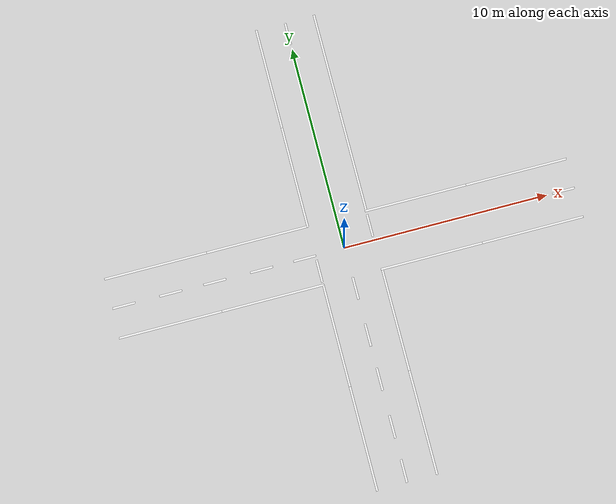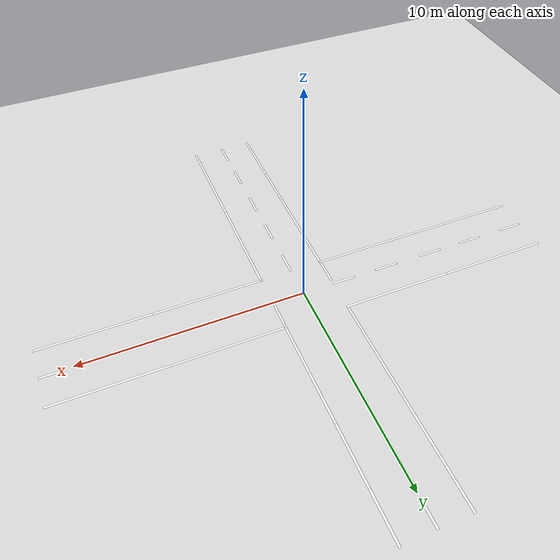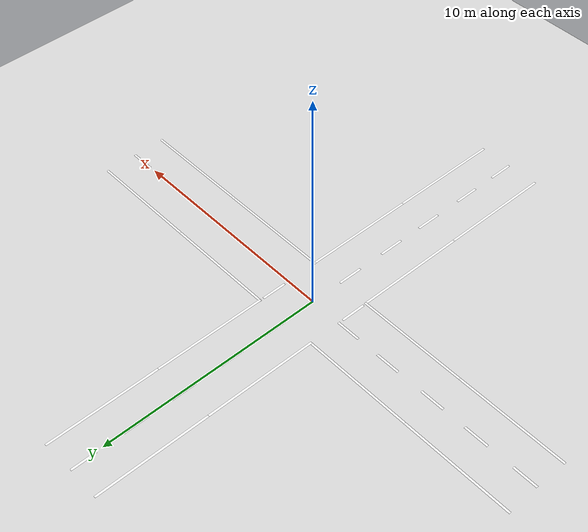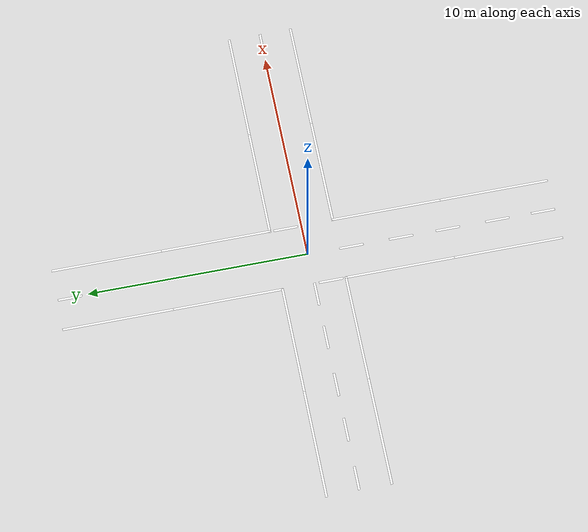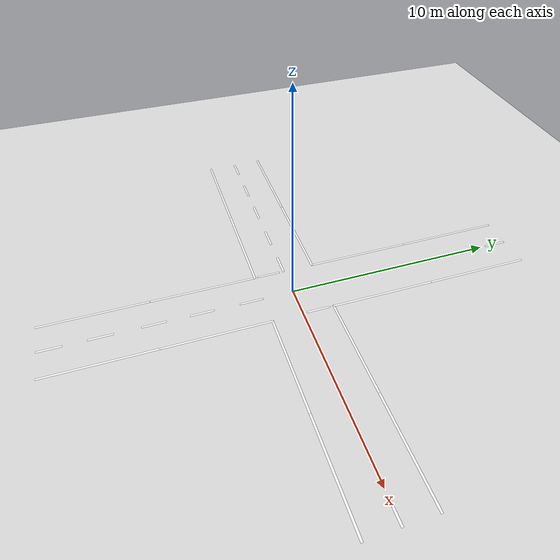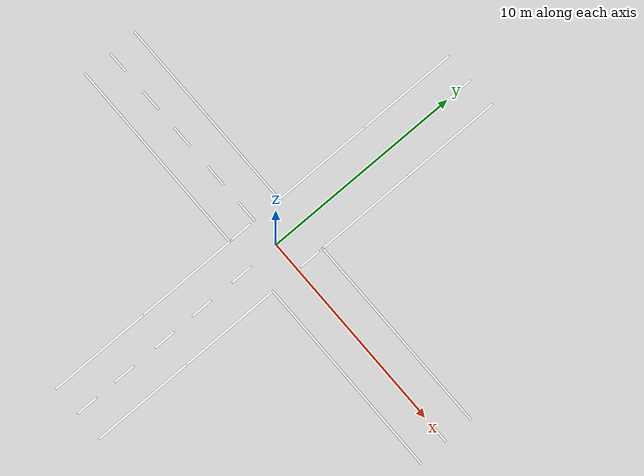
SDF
<?xml version="1.0" ?>
<sdf version="1.4">
  <!-- We use a custom world for the rrbot so that the camera angle is launched correctly -->

  <world name="default">

    <include>
      <uri>model://ground_plane</uri>
    </include>

    <!-- Global light source -->
    <include>
      <uri>model://sun</uri>
    </include>

    <include>
      <uri>model://4WayCrossing</uri>
      <pose>-0.89 0.48 0 0 0 0</pose>
    </include>

    <!-- Focus camera on tall pendulum -->
    <gui fullscreen='0'>
      <camera name='user_camera'>
        <pose>4.927360 -4.376610 3.740080 0.000000 0.275643 2.356190</pose>
        <view_controller>orbit</view_controller>
      </camera>
    </gui>

  </world>
</sdf>

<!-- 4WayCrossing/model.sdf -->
<sdf version='1.6'>
  <model name='4WayCrossing'>
    <model name='road'>
      <model name='roadmark'>
        <link name='link'>
          <pose frame=''>0 0 0.001 0 -0 0</pose>
          <inertial>
            <mass>0.362604</mass>
            <inertia>
              <ixx>0.00016034</ixx>
              <ixy>0</ixy>
              <ixz>0</ixz>
              <iyy>0.757889</iyy>
              <iyz>0</iyz>
              <izz>0.758045</izz>
            </inertia>
            <pose frame=''>0 0 0 0 -0 0</pose>
          </inertial>
          <self_collide>0</self_collide>
          <kinematic>0</kinematic>
          <gravity>0</gravity>
          <visual name='visual'>
            <geometry>
              <box>
                <size>5 0.1 1e-06</size>
              </box>
            </geometry>
            <material>
              <script>
                <name>Gazebo/White</name>
                <uri>file://media/materials/scripts/gazebo.material</uri>
              </script>
              <shader type='pixel'>
                <normal_map>__default__</normal_map>
              </shader>
              <ambient>1 1 1 0</ambient>
              <diffuse>1 1 1 0</diffuse>
              <specular>1 1 1 0</specular>
              <emissive>1 1 1 1</emissive>
              <lighting>1</lighting>
            </material>
            <pose frame=''>0 0 0 0 -0 0</pose>
            <transparency>0</transparency>
            <cast_shadows>1</cast_shadows>
          </visual>
        </link>
        <static>0</static>
        <allow_auto_disable>1</allow_auto_disable>
        <pose frame=''>-0.42038 -0.838671 -0 0 -0 0</pose>
      </model>
      <model name='roadmark_0'>
        <link name='link'>
          <pose frame=''>0 0 0.001 0 -0 0</pose>
          <inertial>
            <mass>0.362604</mass>
            <inertia>
              <ixx>0.00016034</ixx>
              <ixy>0</ixy>
              <ixz>0</ixz>
              <iyy>0.757889</iyy>
              <iyz>0</iyz>
              <izz>0.758045</izz>
            </inertia>
            <pose frame=''>0 0 0 0 -0 0</pose>
          </inertial>
          <self_collide>0</self_collide>
          <kinematic>0</kinematic>
          <gravity>0</gravity>
          <visual name='visual'>
            <geometry>
              <box>
                <size>5 0.1 1e-06</size>
              </box>
            </geometry>
            <material>
              <script>
                <name>Gazebo/White</name>
                <uri>file://media/materials/scripts/gazebo.material</uri>
              </script>
              <shader type='pixel'>
                <normal_map>__default__</normal_map>
              </shader>
              <ambient>1 1 1 0</ambient>
              <diffuse>1 1 1 0</diffuse>
              <specular>1 1 1 0</specular>
              <emissive>1 1 1 1</emissive>
              <lighting>1</lighting>
            </material>
            <pose frame=''>0 0 0 0 -0 0</pose>
            <transparency>0</transparency>
            <cast_shadows>1</cast_shadows>
          </visual>
        </link>
        <static>0</static>
        <allow_auto_disable>1</allow_auto_disable>
        <pose frame=''>4.58056 -0.838753 0 0 -0 0</pose>
      </model>
      <model name='roadmark_1'>
        <link name='link'>
          <pose frame=''>0 0 0.001 0 -0 0</pose>
          <inertial>
            <mass>0.362604</mass>
            <inertia>
              <ixx>0.00016034</ixx>
              <ixy>0</ixy>
              <ixz>0</ixz>
              <iyy>0.757889</iyy>
              <iyz>0</iyz>
              <izz>0.758045</izz>
            </inertia>
            <pose frame=''>0 0 0 0 -0 0</pose>
          </inertial>
          <self_collide>0</self_collide>
          <kinematic>0</kinematic>
          <gravity>0</gravity>
          <visual name='visual'>
            <geometry>
              <box>
                <size>5 0.1 1e-06</size>
              </box>
            </geometry>
            <material>
              <script>
                <name>Gazebo/White</name>
                <uri>file://media/materials/scripts/gazebo.material</uri>
              </script>
              <shader type='pixel'>
                <normal_map>__default__</normal_map>
              </shader>
              <ambient>1 1 1 0</ambient>
              <diffuse>1 1 1 0</diffuse>
              <specular>1 1 1 0</specular>
              <emissive>1 1 1 1</emissive>
              <lighting>1</lighting>
            </material>
            <pose frame=''>0 0 0 0 -0 0</pose>
            <transparency>0</transparency>
            <cast_shadows>1</cast_shadows>
          </visual>
        </link>
        <static>0</static>
        <allow_auto_disable>1</allow_auto_disable>
        <pose frame=''>-0.442951 2.05888 0 0 -0 0</pose>
      </model>
      <model name='roadmark_2'>
        <link name='link'>
          <pose frame=''>0 0 0.001 0 -0 0</pose>
          <inertial>
            <mass>0.362604</mass>
            <inertia>
              <ixx>0.00016034</ixx>
              <ixy>0</ixy>
              <ixz>0</ixz>
              <iyy>0.757889</iyy>
              <iyz>0</iyz>
              <izz>0.758045</izz>
            </inertia>
            <pose frame=''>0 0 0 0 -0 0</pose>
          </inertial>
          <self_collide>0</self_collide>
          <kinematic>0</kinematic>
          <gravity>0</gravity>
          <visual name='visual'>
            <geometry>
              <box>
                <size>5 0.1 1e-06</size>
              </box>
            </geometry>
            <material>
              <script>
                <name>Gazebo/White</name>
                <uri>file://media/materials/scripts/gazebo.material</uri>
              </script>
              <shader type='pixel'>
                <normal_map>__default__</normal_map>
              </shader>
              <ambient>1 1 1 0</ambient>
              <diffuse>1 1 1 0</diffuse>
              <specular>1 1 1 0</specular>
              <emissive>1 1 1 1</emissive>
              <lighting>1</lighting>
            </material>
            <pose frame=''>0 0 0 0 -0 0</pose>
            <transparency>0</transparency>
            <cast_shadows>1</cast_shadows>
          </visual>
        </link>
        <static>0</static>
        <allow_auto_disable>1</allow_auto_disable>
        <pose frame=''>4.55587 2.0583 0 0 -0 0</pose>
      </model>
      <model name='roadmark_mid'>
        <link name='link'>
          <pose frame=''>0 0 0.0001 0 -0 0</pose>
          <inertial>
            <mass>0.0807885</mass>
            <inertia>
              <ixx>3.572e-05</ixx>
              <ixy>0</ixy>
              <ixz>0</ixz>
              <iyy>0.00838261</iyy>
              <iyz>0</iyz>
              <izz>0.00841742</izz>
            </inertia>
            <pose frame=''>0 0 0 0 -0 0</pose>
          </inertial>
          <self_collide>0</self_collide>
          <kinematic>0</kinematic>
          <gravity>0</gravity>
          <visual name='visual'>
            <geometry>
              <box>
                <size>1.1 0.1 1e-06</size>
              </box>
            </geometry>
            <material>
              <script>
                <name>Gazebo/White</name>
                <uri>file://media/materials/scripts/gazebo.material</uri>
              </script>
              <shader type='pixel'>
                <normal_map>__default__</normal_map>
              </shader>
              <ambient>1 1 1 1</ambient>
              <diffuse>0.7 0.7 0.7 0</diffuse>
              <specular>0.01 0.01 0.01 0</specular>
              <emissive>0 0 0 1</emissive>
              <lighting>0</lighting>
            </material>
            <pose frame=''>0 0 0 0 -0 0</pose>
            <transparency>0</transparency>
            <cast_shadows>1</cast_shadows>
          </visual>
        </link>
        <static>0</static>
        <allow_auto_disable>1</allow_auto_disable>
        <pose frame=''>6.50343 0.603813 0 0 -0 0</pose>
      </model>
      <model name='roadmark_mid_0'>
        <link name='link'>
          <pose frame=''>0 0 0.0001 0 -0 0</pose>
          <inertial>
            <mass>0.0807885</mass>
            <inertia>
              <ixx>3.572e-05</ixx>
              <ixy>0</ixy>
              <ixz>0</ixz>
              <iyy>0.00838261</iyy>
              <iyz>0</iyz>
              <izz>0.00841742</izz>
            </inertia>
            <pose frame=''>0 0 0 0 -0 0</pose>
          </inertial>
          <self_collide>0</self_collide>
          <kinematic>0</kinematic>
          <gravity>0</gravity>
          <visual name='visual'>
            <geometry>
              <box>
                <size>1.1 0.1 1e-06</size>
              </box>
            </geometry>
            <material>
              <script>
                <name>Gazebo/White</name>
                <uri>file://media/materials/scripts/gazebo.material</uri>
              </script>
              <shader type='pixel'>
                <normal_map>__default__</normal_map>
              </shader>
              <ambient>1 1 1 1</ambient>
              <diffuse>0.7 0.7 0.7 0</diffuse>
              <specular>0.01 0.01 0.01 0</specular>
              <emissive>0 0 0 1</emissive>
              <lighting>0</lighting>
            </material>
            <pose frame=''>0 0 0 0 -0 0</pose>
            <transparency>0</transparency>
            <cast_shadows>1</cast_shadows>
          </visual>
        </link>
        <static>0</static>
        <allow_auto_disable>1</allow_auto_disable>
        <pose frame=''>4.38554 0.604394 0 0 -0 0</pose>
      </model>
      <model name='roadmark_mid_1'>
        <link name='link'>
          <pose frame=''>0 0 0.0001 0 -0 0</pose>
          <inertial>
            <mass>0.0807885</mass>
            <inertia>
              <ixx>3.572e-05</ixx>
              <ixy>0</ixy>
              <ixz>0</ixz>
              <iyy>0.00838261</iyy>
              <iyz>0</iyz>
              <izz>0.00841742</izz>
            </inertia>
            <pose frame=''>0 0 0 0 -0 0</pose>
          </inertial>
          <self_collide>0</self_collide>
          <kinematic>0</kinematic>
          <gravity>0</gravity>
          <visual name='visual'>
            <geometry>
              <box>
                <size>1.1 0.1 1e-06</size>
              </box>
            </geometry>
            <material>
              <script>
                <name>Gazebo/White</name>
                <uri>file://media/materials/scripts/gazebo.material</uri>
              </script>
              <shader type='pixel'>
                <normal_map>__default__</normal_map>
              </shader>
              <ambient>1 1 1 1</ambient>
              <diffuse>0.7 0.7 0.7 0</diffuse>
              <specular>0.01 0.01 0.01 0</specular>
              <emissive>0 0 0 1</emissive>
              <lighting>0</lighting>
            </material>
            <pose frame=''>0 0 0 0 -0 0</pose>
            <transparency>0</transparency>
            <cast_shadows>1</cast_shadows>
          </visual>
        </link>
        <static>0</static>
        <allow_auto_disable>1</allow_auto_disable>
        <pose frame=''>2.09333 0.603718 0 0 -0 0</pose>
      </model>
      <model name='roadmark_mid_2'>
        <link name='link'>
          <pose frame=''>0 0 0.0001 0 -0 0</pose>
          <inertial>
            <mass>0.0807885</mass>
            <inertia>
              <ixx>3.572e-05</ixx>
              <ixy>0</ixy>
              <ixz>0</ixz>
              <iyy>0.00838261</iyy>
              <iyz>0</iyz>
              <izz>0.00841742</izz>
            </inertia>
            <pose frame=''>0 0 0 0 -0 0</pose>
          </inertial>
          <self_collide>0</self_collide>
          <kinematic>0</kinematic>
          <gravity>0</gravity>
          <visual name='visual'>
            <geometry>
              <box>
                <size>1.1 0.1 1e-06</size>
              </box>
            </geometry>
            <material>
              <script>
                <name>Gazebo/White</name>
                <uri>file://media/materials/scripts/gazebo.material</uri>
              </script>
              <shader type='pixel'>
                <normal_map>__default__</normal_map>
              </shader>
              <ambient>1 1 1 1</ambient>
              <diffuse>0.7 0.7 0.7 0</diffuse>
              <specular>0.01 0.01 0.01 0</specular>
              <emissive>0 0 0 1</emissive>
              <lighting>0</lighting>
            </material>
            <pose frame=''>0 0 0 0 -0 0</pose>
            <transparency>0</transparency>
            <cast_shadows>1</cast_shadows>
          </visual>
        </link>
        <static>0</static>
        <allow_auto_disable>1</allow_auto_disable>
        <pose frame=''>-0.057715 0.605008 0 0 -0 0</pose>
      </model>
      <model name='roadmark_mid_3'>
        <link name='link'>
          <pose frame=''>0 0 0.0001 0 -0 0</pose>
          <inertial>
            <mass>0.0807885</mass>
            <inertia>
              <ixx>3.572e-05</ixx>
              <ixy>0</ixy>
              <ixz>0</ixz>
              <iyy>0.00838261</iyy>
              <iyz>0</iyz>
              <izz>0.00841742</izz>
            </inertia>
            <pose frame=''>0 0 0 0 -0 0</pose>
          </inertial>
          <self_collide>0</self_collide>
          <kinematic>0</kinematic>
          <gravity>0</gravity>
          <visual name='visual'>
            <geometry>
              <box>
                <size>1.1 0.1 1e-06</size>
              </box>
            </geometry>
            <material>
              <script>
                <name>Gazebo/White</name>
                <uri>file://media/materials/scripts/gazebo.material</uri>
              </script>
              <shader type='pixel'>
                <normal_map>__default__</normal_map>
              </shader>
              <ambient>1 1 1 1</ambient>
              <diffuse>0.7 0.7 0.7 0</diffuse>
              <specular>0.01 0.01 0.01 0</specular>
              <emissive>0 0 0 1</emissive>
              <lighting>0</lighting>
            </material>
            <pose frame=''>0 0 0 0 -0 0</pose>
            <transparency>0</transparency>
            <cast_shadows>1</cast_shadows>
          </visual>
        </link>
        <static>0</static>
        <allow_auto_disable>1</allow_auto_disable>
        <pose frame=''>-2.34224 0.605175 0 0 -0 0</pose>
      </model>
      <static>0</static>
      <allow_auto_disable>1</allow_auto_disable>
      <pose frame=''>5.21893 -1.07531 -0.000134 0 -0 0</pose>
    </model>
    <model name='road_0'>
      <model name='roadmark'>
        <link name='link'>
          <pose frame=''>0 0 0.001 0 -0 0</pose>
          <inertial>
            <mass>0.362604</mass>
            <inertia>
              <ixx>0.00016034</ixx>
              <ixy>0</ixy>
              <ixz>0</ixz>
              <iyy>0.757889</iyy>
              <iyz>0</iyz>
              <izz>0.758045</izz>
            </inertia>
            <pose frame=''>0 0 0 0 -0 0</pose>
          </inertial>
          <self_collide>0</self_collide>
          <kinematic>0</kinematic>
          <gravity>0</gravity>
          <visual name='visual'>
            <geometry>
              <box>
                <size>5 0.1 1e-06</size>
              </box>
            </geometry>
            <material>
              <script>
                <name>Gazebo/White</name>
                <uri>file://media/materials/scripts/gazebo.material</uri>
              </script>
              <shader type='pixel'>
                <normal_map>__default__</normal_map>
              </shader>
              <ambient>1 1 1 0</ambient>
              <diffuse>1 1 1 0</diffuse>
              <specular>1 1 1 0</specular>
              <emissive>1 1 1 1</emissive>
              <lighting>1</lighting>
            </material>
            <pose frame=''>0 0 0 0 -0 0</pose>
            <transparency>0</transparency>
            <cast_shadows>1</cast_shadows>
          </visual>
        </link>
        <static>0</static>
        <allow_auto_disable>1</allow_auto_disable>
        <pose frame=''>-0.42038 -0.838671 -0 0 -0 0</pose>
      </model>
      <model name='roadmark_0'>
        <link name='link'>
          <pose frame=''>0 0 0.001 0 -0 0</pose>
          <inertial>
            <mass>0.362604</mass>
            <inertia>
              <ixx>0.00016034</ixx>
              <ixy>0</ixy>
              <ixz>0</ixz>
              <iyy>0.757889</iyy>
              <iyz>0</iyz>
              <izz>0.758045</izz>
            </inertia>
            <pose frame=''>0 0 0 0 -0 0</pose>
          </inertial>
          <self_collide>0</self_collide>
          <kinematic>0</kinematic>
          <gravity>0</gravity>
          <visual name='visual'>
            <geometry>
              <box>
                <size>5 0.1 1e-06</size>
              </box>
            </geometry>
            <material>
              <script>
                <name>Gazebo/White</name>
                <uri>file://media/materials/scripts/gazebo.material</uri>
              </script>
              <shader type='pixel'>
                <normal_map>__default__</normal_map>
              </shader>
              <ambient>1 1 1 0</ambient>
              <diffuse>1 1 1 0</diffuse>
              <specular>1 1 1 0</specular>
              <emissive>1 1 1 1</emissive>
              <lighting>1</lighting>
            </material>
            <pose frame=''>0 0 0 0 -0 0</pose>
            <transparency>0</transparency>
            <cast_shadows>1</cast_shadows>
          </visual>
        </link>
        <static>0</static>
        <allow_auto_disable>1</allow_auto_disable>
        <pose frame=''>4.58056 -0.838753 0 0 -0 0</pose>
      </model>
      <model name='roadmark_1'>
        <link name='link'>
          <pose frame=''>0 0 0.001 0 -0 0</pose>
          <inertial>
            <mass>0.362604</mass>
            <inertia>
              <ixx>0.00016034</ixx>
              <ixy>0</ixy>
              <ixz>0</ixz>
              <iyy>0.757889</iyy>
              <iyz>0</iyz>
              <izz>0.758045</izz>
            </inertia>
            <pose frame=''>0 0 0 0 -0 0</pose>
          </inertial>
          <self_collide>0</self_collide>
          <kinematic>0</kinematic>
          <gravity>0</gravity>
          <visual name='visual'>
            <geometry>
              <box>
                <size>5 0.1 1e-06</size>
              </box>
            </geometry>
            <material>
              <script>
                <name>Gazebo/White</name>
                <uri>file://media/materials/scripts/gazebo.material</uri>
              </script>
              <shader type='pixel'>
                <normal_map>__default__</normal_map>
              </shader>
              <ambient>1 1 1 0</ambient>
              <diffuse>1 1 1 0</diffuse>
              <specular>1 1 1 0</specular>
              <emissive>1 1 1 1</emissive>
              <lighting>1</lighting>
            </material>
            <pose frame=''>0 0 0 0 -0 0</pose>
            <transparency>0</transparency>
            <cast_shadows>1</cast_shadows>
          </visual>
        </link>
        <static>0</static>
        <allow_auto_disable>1</allow_auto_disable>
        <pose frame=''>-0.442951 2.05888 0 0 -0 0</pose>
      </model>
      <model name='roadmark_2'>
        <link name='link'>
          <pose frame=''>0 0 0.001 0 -0 0</pose>
          <inertial>
            <mass>0.362604</mass>
            <inertia>
              <ixx>0.00016034</ixx>
              <ixy>0</ixy>
              <ixz>0</ixz>
              <iyy>0.757889</iyy>
              <iyz>0</iyz>
              <izz>0.758045</izz>
            </inertia>
            <pose frame=''>0 0 0 0 -0 0</pose>
          </inertial>
          <self_collide>0</self_collide>
          <kinematic>0</kinematic>
          <gravity>0</gravity>
          <visual name='visual'>
            <geometry>
              <box>
                <size>5 0.1 1e-06</size>
              </box>
            </geometry>
            <material>
              <script>
                <name>Gazebo/White</name>
                <uri>file://media/materials/scripts/gazebo.material</uri>
              </script>
              <shader type='pixel'>
                <normal_map>__default__</normal_map>
              </shader>
              <ambient>1 1 1 0</ambient>
              <diffuse>1 1 1 0</diffuse>
              <specular>1 1 1 0</specular>
              <emissive>1 1 1 1</emissive>
              <lighting>1</lighting>
            </material>
            <pose frame=''>0 0 0 0 -0 0</pose>
            <transparency>0</transparency>
            <cast_shadows>1</cast_shadows>
          </visual>
        </link>
        <static>0</static>
        <allow_auto_disable>1</allow_auto_disable>
        <pose frame=''>4.55587 2.0583 0 0 -0 0</pose>
      </model>
      <model name='roadmark_mid'>
        <link name='link'>
          <pose frame=''>0 0 0.0001 0 -0 0</pose>
          <inertial>
            <mass>0.0807885</mass>
            <inertia>
              <ixx>3.572e-05</ixx>
              <ixy>0</ixy>
              <ixz>0</ixz>
              <iyy>0.00838261</iyy>
              <iyz>0</iyz>
              <izz>0.00841742</izz>
            </inertia>
            <pose frame=''>0 0 0 0 -0 0</pose>
          </inertial>
          <self_collide>0</self_collide>
          <kinematic>0</kinematic>
          <gravity>0</gravity>
          <visual name='visual'>
            <geometry>
              <box>
                <size>1.1 0.1 1e-06</size>
              </box>
            </geometry>
            <material>
              <script>
                <name>Gazebo/White</name>
                <uri>file://media/materials/scripts/gazebo.material</uri>
              </script>
              <shader type='pixel'>
                <normal_map>__default__</normal_map>
              </shader>
              <ambient>1 1 1 1</ambient>
              <diffuse>0.7 0.7 0.7 0</diffuse>
              <specular>0.01 0.01 0.01 0</specular>
              <emissive>0 0 0 1</emissive>
              <lighting>0</lighting>
            </material>
            <pose frame=''>0 0 0 0 -0 0</pose>
            <transparency>0</transparency>
            <cast_shadows>1</cast_shadows>
          </visual>
        </link>
        <static>0</static>
        <allow_auto_disable>1</allow_auto_disable>
        <pose frame=''>6.50343 0.603813 0 0 -0 0</pose>
      </model>
      <model name='roadmark_mid_0'>
        <link name='link'>
          <pose frame=''>0 0 0.0001 0 -0 0</pose>
          <inertial>
            <mass>0.0807885</mass>
            <inertia>
              <ixx>3.572e-05</ixx>
              <ixy>0</ixy>
              <ixz>0</ixz>
              <iyy>0.00838261</iyy>
              <iyz>0</iyz>
              <izz>0.00841742</izz>
            </inertia>
            <pose frame=''>0 0 0 0 -0 0</pose>
          </inertial>
          <self_collide>0</self_collide>
          <kinematic>0</kinematic>
          <gravity>0</gravity>
          <visual name='visual'>
            <geometry>
              <box>
                <size>1.1 0.1 1e-06</size>
              </box>
            </geometry>
            <material>
              <script>
                <name>Gazebo/White</name>
                <uri>file://media/materials/scripts/gazebo.material</uri>
              </script>
              <shader type='pixel'>
                <normal_map>__default__</normal_map>
              </shader>
              <ambient>1 1 1 1</ambient>
              <diffuse>0.7 0.7 0.7 0</diffuse>
              <specular>0.01 0.01 0.01 0</specular>
              <emissive>0 0 0 1</emissive>
              <lighting>0</lighting>
            </material>
            <pose frame=''>0 0 0 0 -0 0</pose>
            <transparency>0</transparency>
            <cast_shadows>1</cast_shadows>
          </visual>
        </link>
        <static>0</static>
        <allow_auto_disable>1</allow_auto_disable>
        <pose frame=''>4.38554 0.604394 0 0 -0 0</pose>
      </model>
      <model name='roadmark_mid_1'>
        <link name='link'>
          <pose frame=''>0 0 0.0001 0 -0 0</pose>
          <inertial>
            <mass>0.0807885</mass>
            <inertia>
              <ixx>3.572e-05</ixx>
              <ixy>0</ixy>
              <ixz>0</ixz>
              <iyy>0.00838261</iyy>
              <iyz>0</iyz>
              <izz>0.00841742</izz>
            </inertia>
            <pose frame=''>0 0 0 0 -0 0</pose>
          </inertial>
          <self_collide>0</self_collide>
          <kinematic>0</kinematic>
          <gravity>0</gravity>
          <visual name='visual'>
            <geometry>
              <box>
                <size>1.1 0.1 1e-06</size>
              </box>
            </geometry>
            <material>
              <script>
                <name>Gazebo/White</name>
                <uri>file://media/materials/scripts/gazebo.material</uri>
              </script>
              <shader type='pixel'>
                <normal_map>__default__</normal_map>
              </shader>
              <ambient>1 1 1 1</ambient>
              <diffuse>0.7 0.7 0.7 0</diffuse>
              <specular>0.01 0.01 0.01 0</specular>
              <emissive>0 0 0 1</emissive>
              <lighting>0</lighting>
            </material>
            <pose frame=''>0 0 0 0 -0 0</pose>
            <transparency>0</transparency>
            <cast_shadows>1</cast_shadows>
          </visual>
        </link>
        <static>0</static>
        <allow_auto_disable>1</allow_auto_disable>
        <pose frame=''>2.09333 0.603718 0 0 -0 0</pose>
      </model>
      <model name='roadmark_mid_2'>
        <link name='link'>
          <pose frame=''>0 0 0.0001 0 -0 0</pose>
          <inertial>
            <mass>0.0807885</mass>
            <inertia>
              <ixx>3.572e-05</ixx>
              <ixy>0</ixy>
              <ixz>0</ixz>
              <iyy>0.00838261</iyy>
              <iyz>0</iyz>
              <izz>0.00841742</izz>
            </inertia>
            <pose frame=''>0 0 0 0 -0 0</pose>
          </inertial>
          <self_collide>0</self_collide>
          <kinematic>0</kinematic>
          <gravity>0</gravity>
          <visual name='visual'>
            <geometry>
              <box>
                <size>1.1 0.1 1e-06</size>
              </box>
            </geometry>
            <material>
              <script>
                <name>Gazebo/White</name>
                <uri>file://media/materials/scripts/gazebo.material</uri>
              </script>
              <shader type='pixel'>
                <normal_map>__default__</normal_map>
              </shader>
              <ambient>1 1 1 1</ambient>
              <diffuse>0.7 0.7 0.7 0</diffuse>
              <specular>0.01 0.01 0.01 0</specular>
              <emissive>0 0 0 1</emissive>
              <lighting>0</lighting>
            </material>
            <pose frame=''>0 0 0 0 -0 0</pose>
            <transparency>0</transparency>
            <cast_shadows>1</cast_shadows>
          </visual>
        </link>
        <static>0</static>
        <allow_auto_disable>1</allow_auto_disable>
        <pose frame=''>-0.057715 0.605008 0 0 -0 0</pose>
      </model>
      <model name='roadmark_mid_3'>
        <link name='link'>
          <pose frame=''>0 0 0.0001 0 -0 0</pose>
          <inertial>
            <mass>0.0807885</mass>
            <inertia>
              <ixx>3.572e-05</ixx>
              <ixy>0</ixy>
              <ixz>0</ixz>
              <iyy>0.00838261</iyy>
              <iyz>0</iyz>
              <izz>0.00841742</izz>
            </inertia>
            <pose frame=''>0 0 0 0 -0 0</pose>
          </inertial>
          <self_collide>0</self_collide>
          <kinematic>0</kinematic>
          <gravity>0</gravity>
          <visual name='visual'>
            <geometry>
              <box>
                <size>1.1 0.1 1e-06</size>
              </box>
            </geometry>
            <material>
              <script>
                <name>Gazebo/White</name>
                <uri>file://media/materials/scripts/gazebo.material</uri>
              </script>
              <shader type='pixel'>
                <normal_map>__default__</normal_map>
              </shader>
              <ambient>1 1 1 1</ambient>
              <diffuse>0.7 0.7 0.7 0</diffuse>
              <specular>0.01 0.01 0.01 0</specular>
              <emissive>0 0 0 1</emissive>
              <lighting>0</lighting>
            </material>
            <pose frame=''>0 0 0 0 -0 0</pose>
            <transparency>0</transparency>
            <cast_shadows>1</cast_shadows>
          </visual>
        </link>
        <static>0</static>
        <allow_auto_disable>1</allow_auto_disable>
        <pose frame=''>-2.34224 0.605175 0 0 -0 0</pose>
      </model>
      <static>0</static>
      <allow_auto_disable>1</allow_auto_disable>
      <pose frame=''>-7.57779 -1.09794 -0.000134 0 -0 0</pose>
    </model>
    <model name='road_1'>
      <model name='roadmark'>
        <link name='link'>
          <pose frame=''>0 0 0.001 0 -0 0</pose>
          <inertial>
            <mass>0.362604</mass>
            <inertia>
              <ixx>0.00016034</ixx>
              <ixy>0</ixy>
              <ixz>0</ixz>
              <iyy>0.757889</iyy>
              <iyz>0</iyz>
              <izz>0.758045</izz>
            </inertia>
            <pose frame=''>0 0 0 0 -0 0</pose>
          </inertial>
          <self_collide>0</self_collide>
          <kinematic>0</kinematic>
          <gravity>0</gravity>
          <visual name='visual'>
            <geometry>
              <box>
                <size>5 0.1 1e-06</size>
              </box>
            </geometry>
            <material>
              <script>
                <name>Gazebo/White</name>
                <uri>file://media/materials/scripts/gazebo.material</uri>
              </script>
              <shader type='pixel'>
                <normal_map>__default__</normal_map>
              </shader>
              <ambient>1 1 1 0</ambient>
              <diffuse>1 1 1 0</diffuse>
              <specular>1 1 1 0</specular>
              <emissive>1 1 1 1</emissive>
              <lighting>1</lighting>
            </material>
            <pose frame=''>0 0 0 0 -0 0</pose>
            <transparency>0</transparency>
            <cast_shadows>1</cast_shadows>
          </visual>
        </link>
        <static>0</static>
        <allow_auto_disable>1</allow_auto_disable>
        <pose frame=''>-0.42038 -0.838671 -0 0 -0 0</pose>
      </model>
      <model name='roadmark_0'>
        <link name='link'>
          <pose frame=''>0 0 0.001 0 -0 0</pose>
          <inertial>
            <mass>0.362604</mass>
            <inertia>
              <ixx>0.00016034</ixx>
              <ixy>0</ixy>
              <ixz>0</ixz>
              <iyy>0.757889</iyy>
              <iyz>0</iyz>
              <izz>0.758045</izz>
            </inertia>
            <pose frame=''>0 0 0 0 -0 0</pose>
          </inertial>
          <self_collide>0</self_collide>
          <kinematic>0</kinematic>
          <gravity>0</gravity>
          <visual name='visual'>
            <geometry>
              <box>
                <size>5 0.1 1e-06</size>
              </box>
            </geometry>
            <material>
              <script>
                <name>Gazebo/White</name>
                <uri>file://media/materials/scripts/gazebo.material</uri>
              </script>
              <shader type='pixel'>
                <normal_map>__default__</normal_map>
              </shader>
              <ambient>1 1 1 0</ambient>
              <diffuse>1 1 1 0</diffuse>
              <specular>1 1 1 0</specular>
              <emissive>1 1 1 1</emissive>
              <lighting>1</lighting>
            </material>
            <pose frame=''>0 0 0 0 -0 0</pose>
            <transparency>0</transparency>
            <cast_shadows>1</cast_shadows>
          </visual>
        </link>
        <static>0</static>
        <allow_auto_disable>1</allow_auto_disable>
        <pose frame=''>4.58056 -0.838753 0 0 -0 0</pose>
      </model>
      <model name='roadmark_1'>
        <link name='link'>
          <pose frame=''>0 0 0.001 0 -0 0</pose>
          <inertial>
            <mass>0.362604</mass>
            <inertia>
              <ixx>0.00016034</ixx>
              <ixy>0</ixy>
              <ixz>0</ixz>
              <iyy>0.757889</iyy>
              <iyz>0</iyz>
              <izz>0.758045</izz>
            </inertia>
            <pose frame=''>0 0 0 0 -0 0</pose>
          </inertial>
          <self_collide>0</self_collide>
          <kinematic>0</kinematic>
          <gravity>0</gravity>
          <visual name='visual'>
            <geometry>
              <box>
                <size>5 0.1 1e-06</size>
              </box>
            </geometry>
            <material>
              <script>
                <name>Gazebo/White</name>
                <uri>file://media/materials/scripts/gazebo.material</uri>
              </script>
              <shader type='pixel'>
                <normal_map>__default__</normal_map>
              </shader>
              <ambient>1 1 1 0</ambient>
              <diffuse>1 1 1 0</diffuse>
              <specular>1 1 1 0</specular>
              <emissive>1 1 1 1</emissive>
              <lighting>1</lighting>
            </material>
            <pose frame=''>0 0 0 0 -0 0</pose>
            <transparency>0</transparency>
            <cast_shadows>1</cast_shadows>
          </visual>
        </link>
        <static>0</static>
        <allow_auto_disable>1</allow_auto_disable>
        <pose frame=''>-0.442951 2.05888 0 0 -0 0</pose>
      </model>
      <model name='roadmark_2'>
        <link name='link'>
          <pose frame=''>0 0 0.001 0 -0 0</pose>
          <inertial>
            <mass>0.362604</mass>
            <inertia>
              <ixx>0.00016034</ixx>
              <ixy>0</ixy>
              <ixz>0</ixz>
              <iyy>0.757889</iyy>
              <iyz>0</iyz>
              <izz>0.758045</izz>
            </inertia>
            <pose frame=''>0 0 0 0 -0 0</pose>
          </inertial>
          <self_collide>0</self_collide>
          <kinematic>0</kinematic>
          <gravity>0</gravity>
          <visual name='visual'>
            <geometry>
              <box>
                <size>5 0.1 1e-06</size>
              </box>
            </geometry>
            <material>
              <script>
                <name>Gazebo/White</name>
                <uri>file://media/materials/scripts/gazebo.material</uri>
              </script>
              <shader type='pixel'>
                <normal_map>__default__</normal_map>
              </shader>
              <ambient>1 1 1 0</ambient>
              <diffuse>1 1 1 0</diffuse>
              <specular>1 1 1 0</specular>
              <emissive>1 1 1 1</emissive>
              <lighting>1</lighting>
            </material>
            <pose frame=''>0 0 0 0 -0 0</pose>
            <transparency>0</transparency>
            <cast_shadows>1</cast_shadows>
          </visual>
        </link>
        <static>0</static>
        <allow_auto_disable>1</allow_auto_disable>
        <pose frame=''>4.55587 2.0583 0 0 -0 0</pose>
      </model>
      <model name='roadmark_mid'>
        <link name='link'>
          <pose frame=''>0 0 0.0001 0 -0 0</pose>
          <inertial>
            <mass>0.0807885</mass>
            <inertia>
              <ixx>3.572e-05</ixx>
              <ixy>0</ixy>
              <ixz>0</ixz>
              <iyy>0.00838261</iyy>
              <iyz>0</iyz>
              <izz>0.00841742</izz>
            </inertia>
            <pose frame=''>0 0 0 0 -0 0</pose>
          </inertial>
          <self_collide>0</self_collide>
          <kinematic>0</kinematic>
          <gravity>0</gravity>
          <visual name='visual'>
            <geometry>
              <box>
                <size>1.1 0.1 1e-06</size>
              </box>
            </geometry>
            <material>
              <script>
                <name>Gazebo/White</name>
                <uri>file://media/materials/scripts/gazebo.material</uri>
              </script>
              <shader type='pixel'>
                <normal_map>__default__</normal_map>
              </shader>
              <ambient>1 1 1 1</ambient>
              <diffuse>0.7 0.7 0.7 0</diffuse>
              <specular>0.01 0.01 0.01 0</specular>
              <emissive>0 0 0 1</emissive>
              <lighting>0</lighting>
            </material>
            <pose frame=''>0 0 0 0 -0 0</pose>
            <transparency>0</transparency>
            <cast_shadows>1</cast_shadows>
          </visual>
        </link>
        <static>0</static>
        <allow_auto_disable>1</allow_auto_disable>
        <pose frame=''>6.50343 0.603813 0 0 -0 0</pose>
      </model>
      <model name='roadmark_mid_0'>
        <link name='link'>
          <pose frame=''>0 0 0.0001 0 -0 0</pose>
          <inertial>
            <mass>0.0807885</mass>
            <inertia>
              <ixx>3.572e-05</ixx>
              <ixy>0</ixy>
              <ixz>0</ixz>
              <iyy>0.00838261</iyy>
              <iyz>0</iyz>
              <izz>0.00841742</izz>
            </inertia>
            <pose frame=''>0 0 0 0 -0 0</pose>
          </inertial>
          <self_collide>0</self_collide>
          <kinematic>0</kinematic>
          <gravity>0</gravity>
          <visual name='visual'>
            <geometry>
              <box>
                <size>1.1 0.1 1e-06</size>
              </box>
            </geometry>
            <material>
              <script>
                <name>Gazebo/White</name>
                <uri>file://media/materials/scripts/gazebo.material</uri>
              </script>
              <shader type='pixel'>
                <normal_map>__default__</normal_map>
              </shader>
              <ambient>1 1 1 1</ambient>
              <diffuse>0.7 0.7 0.7 0</diffuse>
              <specular>0.01 0.01 0.01 0</specular>
              <emissive>0 0 0 1</emissive>
              <lighting>0</lighting>
            </material>
            <pose frame=''>0 0 0 0 -0 0</pose>
            <transparency>0</transparency>
            <cast_shadows>1</cast_shadows>
          </visual>
        </link>
        <static>0</static>
        <allow_auto_disable>1</allow_auto_disable>
        <pose frame=''>4.38554 0.604394 0 0 -0 0</pose>
      </model>
      <model name='roadmark_mid_1'>
        <link name='link'>
          <pose frame=''>0 0 0.0001 0 -0 0</pose>
          <inertial>
            <mass>0.0807885</mass>
            <inertia>
              <ixx>3.572e-05</ixx>
              <ixy>0</ixy>
              <ixz>0</ixz>
              <iyy>0.00838261</iyy>
              <iyz>0</iyz>
              <izz>0.00841742</izz>
            </inertia>
            <pose frame=''>0 0 0 0 -0 0</pose>
          </inertial>
          <self_collide>0</self_collide>
          <kinematic>0</kinematic>
          <gravity>0</gravity>
          <visual name='visual'>
            <geometry>
              <box>
                <size>1.1 0.1 1e-06</size>
              </box>
            </geometry>
            <material>
              <script>
                <name>Gazebo/White</name>
                <uri>file://media/materials/scripts/gazebo.material</uri>
              </script>
              <shader type='pixel'>
                <normal_map>__default__</normal_map>
              </shader>
              <ambient>1 1 1 1</ambient>
              <diffuse>0.7 0.7 0.7 0</diffuse>
              <specular>0.01 0.01 0.01 0</specular>
              <emissive>0 0 0 1</emissive>
              <lighting>0</lighting>
            </material>
            <pose frame=''>0 0 0 0 -0 0</pose>
            <transparency>0</transparency>
            <cast_shadows>1</cast_shadows>
          </visual>
        </link>
        <static>0</static>
        <allow_auto_disable>1</allow_auto_disable>
        <pose frame=''>2.09333 0.603718 0 0 -0 0</pose>
      </model>
      <model name='roadmark_mid_2'>
        <link name='link'>
          <pose frame=''>0 0 0.0001 0 -0 0</pose>
          <inertial>
            <mass>0.0807885</mass>
            <inertia>
              <ixx>3.572e-05</ixx>
              <ixy>0</ixy>
              <ixz>0</ixz>
              <iyy>0.00838261</iyy>
              <iyz>0</iyz>
              <izz>0.00841742</izz>
            </inertia>
            <pose frame=''>0 0 0 0 -0 0</pose>
          </inertial>
          <self_collide>0</self_collide>
          <kinematic>0</kinematic>
          <gravity>0</gravity>
          <visual name='visual'>
            <geometry>
              <box>
                <size>1.1 0.1 1e-06</size>
              </box>
            </geometry>
            <material>
              <script>
                <name>Gazebo/White</name>
                <uri>file://media/materials/scripts/gazebo.material</uri>
              </script>
              <shader type='pixel'>
                <normal_map>__default__</normal_map>
              </shader>
              <ambient>1 1 1 1</ambient>
              <diffuse>0.7 0.7 0.7 0</diffuse>
              <specular>0.01 0.01 0.01 0</specular>
              <emissive>0 0 0 1</emissive>
              <lighting>0</lighting>
            </material>
            <pose frame=''>0 0 0 0 -0 0</pose>
            <transparency>0</transparency>
            <cast_shadows>1</cast_shadows>
          </visual>
        </link>
        <static>0</static>
        <allow_auto_disable>1</allow_auto_disable>
        <pose frame=''>-0.057715 0.605008 0 0 -0 0</pose>
      </model>
      <model name='roadmark_mid_3'>
        <link name='link'>
          <pose frame=''>0 0 0.0001 0 -0 0</pose>
          <inertial>
            <mass>0.0807885</mass>
            <inertia>
              <ixx>3.572e-05</ixx>
              <ixy>0</ixy>
              <ixz>0</ixz>
              <iyy>0.00838261</iyy>
              <iyz>0</iyz>
              <izz>0.00841742</izz>
            </inertia>
            <pose frame=''>0 0 0 0 -0 0</pose>
          </inertial>
          <self_collide>0</self_collide>
          <kinematic>0</kinematic>
          <gravity>0</gravity>
          <visual name='visual'>
            <geometry>
              <box>
                <size>1.1 0.1 1e-06</size>
              </box>
            </geometry>
            <material>
              <script>
                <name>Gazebo/White</name>
                <uri>file://media/materials/scripts/gazebo.material</uri>
              </script>
              <shader type='pixel'>
                <normal_map>__default__</normal_map>
              </shader>
              <ambient>1 1 1 1</ambient>
              <diffuse>0.7 0.7 0.7 0</diffuse>
              <specular>0.01 0.01 0.01 0</specular>
              <emissive>0 0 0 1</emissive>
              <lighting>0</lighting>
            </material>
            <pose frame=''>0 0 0 0 -0 0</pose>
            <transparency>0</transparency>
            <cast_shadows>1</cast_shadows>
          </visual>
        </link>
        <static>0</static>
        <allow_auto_disable>1</allow_auto_disable>
        <pose frame=''>-2.34224 0.605175 0 0 -0 0</pose>
      </model>
      <static>0</static>
      <allow_auto_disable>1</allow_auto_disable>
      <pose frame=''>0.302531 -4.82421 -0.000134 0 0 -1.56974</pose>
    </model>
    <model name='road_1_clone'>
      <model name='roadmark'>
        <link name='link'>
          <pose frame=''>0 0 0.001 0 -0 0</pose>
          <inertial>
            <mass>0.362604</mass>
            <inertia>
              <ixx>0.00016034</ixx>
              <ixy>0</ixy>
              <ixz>0</ixz>
              <iyy>0.757889</iyy>
              <iyz>0</iyz>
              <izz>0.758045</izz>
            </inertia>
            <pose frame=''>0 0 0 0 -0 0</pose>
          </inertial>
          <self_collide>0</self_collide>
          <kinematic>0</kinematic>
          <gravity>0</gravity>
          <visual name='visual'>
            <geometry>
              <box>
                <size>5 0.1 1e-06</size>
              </box>
            </geometry>
            <material>
              <script>
                <name>Gazebo/White</name>
                <uri>file://media/materials/scripts/gazebo.material</uri>
              </script>
              <shader type='pixel'>
                <normal_map>__default__</normal_map>
              </shader>
              <ambient>1 1 1 0</ambient>
              <diffuse>1 1 1 0</diffuse>
              <specular>1 1 1 0</specular>
              <emissive>1 1 1 1</emissive>
              <lighting>1</lighting>
            </material>
            <pose frame=''>0 0 0 0 -0 0</pose>
            <transparency>0</transparency>
            <cast_shadows>1</cast_shadows>
          </visual>
        </link>
        <static>0</static>
        <allow_auto_disable>1</allow_auto_disable>
        <pose frame=''>-0.42038 -0.838671 -0 0 -0 0</pose>
      </model>
      <model name='roadmark_0'>
        <link name='link'>
          <pose frame=''>0 0 0.001 0 -0 0</pose>
          <inertial>
            <mass>0.362604</mass>
            <inertia>
              <ixx>0.00016034</ixx>
              <ixy>0</ixy>
              <ixz>0</ixz>
              <iyy>0.757889</iyy>
              <iyz>0</iyz>
              <izz>0.758045</izz>
            </inertia>
            <pose frame=''>0 0 0 0 -0 0</pose>
          </inertial>
          <self_collide>0</self_collide>
          <kinematic>0</kinematic>
          <gravity>0</gravity>
          <visual name='visual'>
            <geometry>
              <box>
                <size>5 0.1 1e-06</size>
              </box>
            </geometry>
            <material>
              <script>
                <name>Gazebo/White</name>
                <uri>file://media/materials/scripts/gazebo.material</uri>
              </script>
              <shader type='pixel'>
                <normal_map>__default__</normal_map>
              </shader>
              <ambient>1 1 1 0</ambient>
              <diffuse>1 1 1 0</diffuse>
              <specular>1 1 1 0</specular>
              <emissive>1 1 1 1</emissive>
              <lighting>1</lighting>
            </material>
            <pose frame=''>0 0 0 0 -0 0</pose>
            <transparency>0</transparency>
            <cast_shadows>1</cast_shadows>
          </visual>
        </link>
        <static>0</static>
        <allow_auto_disable>1</allow_auto_disable>
        <pose frame=''>4.58056 -0.838753 0 0 -0 0</pose>
      </model>
      <model name='roadmark_1'>
        <link name='link'>
          <pose frame=''>0 0 0.001 0 -0 0</pose>
          <inertial>
            <mass>0.362604</mass>
            <inertia>
              <ixx>0.00016034</ixx>
              <ixy>0</ixy>
              <ixz>0</ixz>
              <iyy>0.757889</iyy>
              <iyz>0</iyz>
              <izz>0.758045</izz>
            </inertia>
            <pose frame=''>0 0 0 0 -0 0</pose>
          </inertial>
          <self_collide>0</self_collide>
          <kinematic>0</kinematic>
          <gravity>0</gravity>
          <visual name='visual'>
            <geometry>
              <box>
                <size>5 0.1 1e-06</size>
              </box>
            </geometry>
            <material>
              <script>
                <name>Gazebo/White</name>
                <uri>file://media/materials/scripts/gazebo.material</uri>
              </script>
              <shader type='pixel'>
                <normal_map>__default__</normal_map>
              </shader>
              <ambient>1 1 1 0</ambient>
              <diffuse>1 1 1 0</diffuse>
              <specular>1 1 1 0</specular>
              <emissive>1 1 1 1</emissive>
              <lighting>1</lighting>
            </material>
            <pose frame=''>0 0 0 0 -0 0</pose>
            <transparency>0</transparency>
            <cast_shadows>1</cast_shadows>
          </visual>
        </link>
        <static>0</static>
        <allow_auto_disable>1</allow_auto_disable>
        <pose frame=''>-0.442951 2.05888 0 0 -0 0</pose>
      </model>
      <model name='roadmark_2'>
        <link name='link'>
          <pose frame=''>0 0 0.001 0 -0 0</pose>
          <inertial>
            <mass>0.362604</mass>
            <inertia>
              <ixx>0.00016034</ixx>
              <ixy>0</ixy>
              <ixz>0</ixz>
              <iyy>0.757889</iyy>
              <iyz>0</iyz>
              <izz>0.758045</izz>
            </inertia>
            <pose frame=''>0 0 0 0 -0 0</pose>
          </inertial>
          <self_collide>0</self_collide>
          <kinematic>0</kinematic>
          <gravity>0</gravity>
          <visual name='visual'>
            <geometry>
              <box>
                <size>5 0.1 1e-06</size>
              </box>
            </geometry>
            <material>
              <script>
                <name>Gazebo/White</name>
                <uri>file://media/materials/scripts/gazebo.material</uri>
              </script>
              <shader type='pixel'>
                <normal_map>__default__</normal_map>
              </shader>
              <ambient>1 1 1 0</ambient>
              <diffuse>1 1 1 0</diffuse>
              <specular>1 1 1 0</specular>
              <emissive>1 1 1 1</emissive>
              <lighting>1</lighting>
            </material>
            <pose frame=''>0 0 0 0 -0 0</pose>
            <transparency>0</transparency>
            <cast_shadows>1</cast_shadows>
          </visual>
        </link>
        <static>0</static>
        <allow_auto_disable>1</allow_auto_disable>
        <pose frame=''>4.55587 2.0583 0 0 -0 0</pose>
      </model>
      <model name='roadmark_mid'>
        <link name='link'>
          <pose frame=''>0 0 0.0001 0 -0 0</pose>
          <inertial>
            <mass>0.0807885</mass>
            <inertia>
              <ixx>3.572e-05</ixx>
              <ixy>0</ixy>
              <ixz>0</ixz>
              <iyy>0.00838261</iyy>
              <iyz>0</iyz>
              <izz>0.00841742</izz>
            </inertia>
            <pose frame=''>0 0 0 0 -0 0</pose>
          </inertial>
          <self_collide>0</self_collide>
          <kinematic>0</kinematic>
          <gravity>0</gravity>
          <visual name='visual'>
            <geometry>
              <box>
                <size>1.1 0.1 1e-06</size>
              </box>
            </geometry>
            <material>
              <script>
                <name>Gazebo/White</name>
                <uri>file://media/materials/scripts/gazebo.material</uri>
              </script>
              <shader type='pixel'>
                <normal_map>__default__</normal_map>
              </shader>
              <ambient>1 1 1 1</ambient>
              <diffuse>0.7 0.7 0.7 0</diffuse>
              <specular>0.01 0.01 0.01 0</specular>
              <emissive>0 0 0 1</emissive>
              <lighting>0</lighting>
            </material>
            <pose frame=''>0 0 0 0 -0 0</pose>
            <transparency>0</transparency>
            <cast_shadows>1</cast_shadows>
          </visual>
        </link>
        <static>0</static>
        <allow_auto_disable>1</allow_auto_disable>
        <pose frame=''>6.50343 0.603813 0 0 -0 0</pose>
      </model>
      <model name='roadmark_mid_0'>
        <link name='link'>
          <pose frame=''>0 0 0.0001 0 -0 0</pose>
          <inertial>
            <mass>0.0807885</mass>
            <inertia>
              <ixx>3.572e-05</ixx>
              <ixy>0</ixy>
              <ixz>0</ixz>
              <iyy>0.00838261</iyy>
              <iyz>0</iyz>
              <izz>0.00841742</izz>
            </inertia>
            <pose frame=''>0 0 0 0 -0 0</pose>
          </inertial>
          <self_collide>0</self_collide>
          <kinematic>0</kinematic>
          <gravity>0</gravity>
          <visual name='visual'>
            <geometry>
              <box>
                <size>1.1 0.1 1e-06</size>
              </box>
            </geometry>
            <material>
              <script>
                <name>Gazebo/White</name>
                <uri>file://media/materials/scripts/gazebo.material</uri>
              </script>
              <shader type='pixel'>
                <normal_map>__default__</normal_map>
              </shader>
              <ambient>1 1 1 1</ambient>
              <diffuse>0.7 0.7 0.7 0</diffuse>
              <specular>0.01 0.01 0.01 0</specular>
              <emissive>0 0 0 1</emissive>
              <lighting>0</lighting>
            </material>
            <pose frame=''>0 0 0 0 -0 0</pose>
            <transparency>0</transparency>
            <cast_shadows>1</cast_shadows>
          </visual>
        </link>
        <static>0</static>
        <allow_auto_disable>1</allow_auto_disable>
        <pose frame=''>4.38554 0.604394 0 0 -0 0</pose>
      </model>
      <model name='roadmark_mid_1'>
        <link name='link'>
          <pose frame=''>0 0 0.0001 0 -0 0</pose>
          <inertial>
            <mass>0.0807885</mass>
            <inertia>
              <ixx>3.572e-05</ixx>
              <ixy>0</ixy>
              <ixz>0</ixz>
              <iyy>0.00838261</iyy>
              <iyz>0</iyz>
              <izz>0.00841742</izz>
            </inertia>
            <pose frame=''>0 0 0 0 -0 0</pose>
          </inertial>
          <self_collide>0</self_collide>
          <kinematic>0</kinematic>
          <gravity>0</gravity>
          <visual name='visual'>
            <geometry>
              <box>
                <size>1.1 0.1 1e-06</size>
              </box>
            </geometry>
            <material>
              <script>
                <name>Gazebo/White</name>
                <uri>file://media/materials/scripts/gazebo.material</uri>
              </script>
              <shader type='pixel'>
                <normal_map>__default__</normal_map>
              </shader>
              <ambient>1 1 1 1</ambient>
              <diffuse>0.7 0.7 0.7 0</diffuse>
              <specular>0.01 0.01 0.01 0</specular>
              <emissive>0 0 0 1</emissive>
              <lighting>0</lighting>
            </material>
            <pose frame=''>0 0 0 0 -0 0</pose>
            <transparency>0</transparency>
            <cast_shadows>1</cast_shadows>
          </visual>
        </link>
        <static>0</static>
        <allow_auto_disable>1</allow_auto_disable>
        <pose frame=''>2.09333 0.603718 0 0 -0 0</pose>
      </model>
      <model name='roadmark_mid_2'>
        <link name='link'>
          <pose frame=''>0 0 0.0001 0 -0 0</pose>
          <inertial>
            <mass>0.0807885</mass>
            <inertia>
              <ixx>3.572e-05</ixx>
              <ixy>0</ixy>
              <ixz>0</ixz>
              <iyy>0.00838261</iyy>
              <iyz>0</iyz>
              <izz>0.00841742</izz>
            </inertia>
            <pose frame=''>0 0 0 0 -0 0</pose>
          </inertial>
          <self_collide>0</self_collide>
          <kinematic>0</kinematic>
          <gravity>0</gravity>
          <visual name='visual'>
            <geometry>
              <box>
                <size>1.1 0.1 1e-06</size>
              </box>
            </geometry>
            <material>
              <script>
                <name>Gazebo/White</name>
                <uri>file://media/materials/scripts/gazebo.material</uri>
              </script>
              <shader type='pixel'>
                <normal_map>__default__</normal_map>
              </shader>
              <ambient>1 1 1 1</ambient>
              <diffuse>0.7 0.7 0.7 0</diffuse>
              <specular>0.01 0.01 0.01 0</specular>
              <emissive>0 0 0 1</emissive>
              <lighting>0</lighting>
            </material>
            <pose frame=''>0 0 0 0 -0 0</pose>
            <transparency>0</transparency>
            <cast_shadows>1</cast_shadows>
          </visual>
        </link>
        <static>0</static>
        <allow_auto_disable>1</allow_auto_disable>
        <pose frame=''>-0.057715 0.605008 0 0 -0 0</pose>
      </model>
      <model name='roadmark_mid_3'>
        <link name='link'>
          <pose frame=''>0 0 0.0001 0 -0 0</pose>
          <inertial>
            <mass>0.0807885</mass>
            <inertia>
              <ixx>3.572e-05</ixx>
              <ixy>0</ixy>
              <ixz>0</ixz>
              <iyy>0.00838261</iyy>
              <iyz>0</iyz>
              <izz>0.00841742</izz>
            </inertia>
            <pose frame=''>0 0 0 0 -0 0</pose>
          </inertial>
          <self_collide>0</self_collide>
          <kinematic>0</kinematic>
          <gravity>0</gravity>
          <visual name='visual'>
            <geometry>
              <box>
                <size>1.1 0.1 1e-06</size>
              </box>
            </geometry>
            <material>
              <script>
                <name>Gazebo/White</name>
                <uri>file://media/materials/scripts/gazebo.material</uri>
              </script>
              <shader type='pixel'>
                <normal_map>__default__</normal_map>
              </shader>
              <ambient>1 1 1 1</ambient>
              <diffuse>0.7 0.7 0.7 0</diffuse>
              <specular>0.01 0.01 0.01 0</specular>
              <emissive>0 0 0 1</emissive>
              <lighting>0</lighting>
            </material>
            <pose frame=''>0 0 0 0 -0 0</pose>
            <transparency>0</transparency>
            <cast_shadows>1</cast_shadows>
          </visual>
        </link>
        <static>0</static>
        <allow_auto_disable>1</allow_auto_disable>
        <pose frame=''>-2.34224 0.605175 0 0 -0 0</pose>
      </model>
      <static>0</static>
      <allow_auto_disable>1</allow_auto_disable>
      <pose frame=''>0.277041 7.9983 -0.000134 0 0 -1.56974</pose>
    </model>
    <model name='roadmark_mid'>
      <link name='link'>
        <pose frame=''>0 0 0.0001 0 -0 0</pose>
        <inertial>
          <mass>0.0807885</mass>
          <inertia>
            <ixx>3.572e-05</ixx>
            <ixy>0</ixy>
            <ixz>0</ixz>
            <iyy>0.00838261</iyy>
            <iyz>0</iyz>
            <izz>0.00841742</izz>
          </inertia>
          <pose frame=''>0 0 0 0 -0 0</pose>
        </inertial>
        <self_collide>0</self_collide>
        <kinematic>0</kinematic>
        <gravity>0</gravity>
        <visual name='visual'>
          <geometry>
            <box>
              <size>1.1 0.1 1e-06</size>
            </box>
          </geometry>
          <material>
            <script>
              <name>Gazebo/White</name>
              <uri>file://media/materials/scripts/gazebo.material</uri>
            </script>
            <shader type='pixel'>
              <normal_map>__default__</normal_map>
            </shader>
            <ambient>1 1 1 1</ambient>
            <diffuse>0.7 0.7 0.7 0</diffuse>
            <specular>0.01 0.01 0.01 0</specular>
            <emissive>0 0 0 1</emissive>
            <lighting>0</lighting>
          </material>
          <pose frame=''>0 0 0 0 -0 0</pose>
          <transparency>0</transparency>
          <cast_shadows>1</cast_shadows>
        </visual>
      </link>
      <static>0</static>
      <allow_auto_disable>1</allow_auto_disable>
      <pose frame=''>2.33067 0.253169 -0.00013 0.025935 -0.000165 -1.56978</pose>
    </model>
    <model name='roadmark_mid_clone'>
      <link name='link'>
        <pose frame=''>0 0 0.0001 0 -0 0</pose>
        <inertial>
          <mass>0.0807885</mass>
          <inertia>
            <ixx>3.572e-05</ixx>
            <ixy>0</ixy>
            <ixz>0</ixz>
            <iyy>0.00838261</iyy>
            <iyz>0</iyz>
            <izz>0.00841742</izz>
          </inertia>
          <pose frame=''>0 0 0 0 -0 0</pose>
        </inertial>
        <self_collide>0</self_collide>
        <kinematic>0</kinematic>
        <gravity>0</gravity>
        <visual name='visual'>
          <geometry>
            <box>
              <size>1.1 0.1 1e-06</size>
            </box>
          </geometry>
          <material>
            <script>
              <name>Gazebo/White</name>
              <uri>file://media/materials/scripts/gazebo.material</uri>
            </script>
            <shader type='pixel'>
              <normal_map>__default__</normal_map>
            </shader>
            <ambient>1 1 1 1</ambient>
            <diffuse>0.7 0.7 0.7 0</diffuse>
            <specular>0.01 0.01 0.01 0</specular>
            <emissive>0 0 0 1</emissive>
            <lighting>0</lighting>
          </material>
          <pose frame=''>0 0 0 0 -0 0</pose>
          <transparency>0</transparency>
          <cast_shadows>1</cast_shadows>
        </visual>
      </link>
      <static>0</static>
      <allow_auto_disable>1</allow_auto_disable>
      <pose frame=''>-0.551381 -1.25412 0.000665 0.025935 -0.000165 -1.56978</pose>
    </model>
    <static>0</static>
    <allow_auto_disable>1</allow_auto_disable>
  </model>
</sdf>
